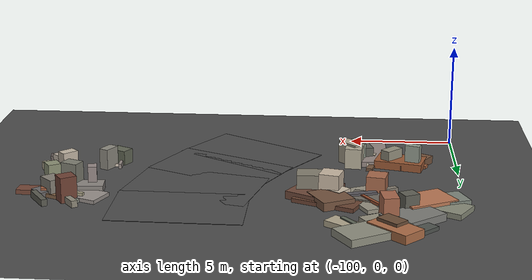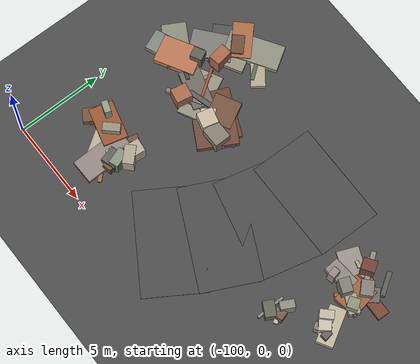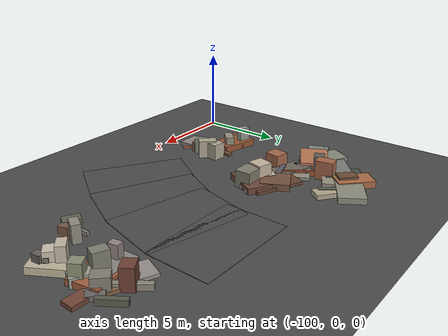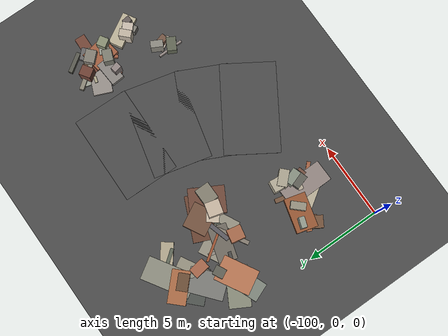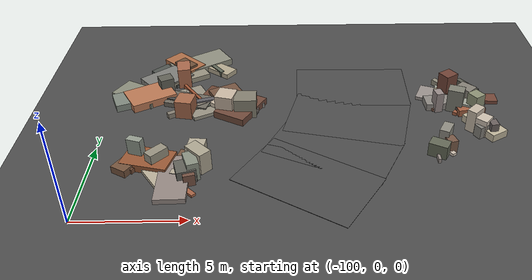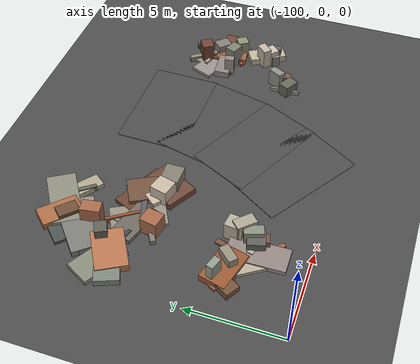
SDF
<sdf version="1.6">
 <world name="navitas_arena">
  <model name="ground_plane">
   <static>true</static>
   <link name="link">
    <collision name="collision">
     <geometry><plane><normal>0 0 1</normal><size>400 400</size></plane></geometry>
     <surface><friction><ode><mu>0.800</mu><mu2>0.800</mu2></ode></friction></surface>
    </collision>
    <visual name="visual">
     <cast_shadows>false</cast_shadows>
     <geometry><plane><normal>0 0 1</normal><size>400 400</size></plane></geometry>
     <material>
      <specular>0.04 0.04 0.04 1</specular>
      <script>
       <uri>file://media/materials/scripts/navitas_asphalt.material</uri>
       <name>Navitas/RealArenaAsphalt</name>
      </script>
     </material>
    </visual>
   </link>
  </model>
  <model name="road_kolay_2_9">
   <static>true</static>
   <pose>-89.992 2.500 0.040 0 0 1.006</pose>
   <link name="link">
    <collision name="col"><geometry><box><size>3.662 6.000 0.020</size></box></geometry></collision>
    <visual name="vis">
     <geometry><box><size>3.662 6.000 0.020</size></box></geometry>
     <material>
      <specular>0.04 0.04 0.04 1</specular>
      <script>
       <uri>file://media/materials/scripts/navitas_asphalt.material</uri>
       <name>Navitas/RealArenaAsphalt</name>
      </script>
     </material>
    </visual>
   </link>
  </model>
  <model name="road_kolay_2_10">
   <static>true</static>
   <pose>-88.686 4.833 0.040 0 0 1.118</pose>
   <link name="link">
    <collision name="col"><geometry><box><size>3.494 6.000 0.020</size></box></geometry></collision>
    <visual name="vis">
     <geometry><box><size>3.494 6.000 0.020</size></box></geometry>
     <material>
      <specular>0.04 0.04 0.04 1</specular>
      <script>
       <uri>file://media/materials/scripts/navitas_asphalt.material</uri>
       <name>Navitas/RealArenaAsphalt</name>
      </script>
     </material>
    </visual>
   </link>
  </model>
  <model name="road_kolay_2_11">
   <static>true</static>
   <pose>-87.765 7.460 0.040 0 0 1.333</pose>
   <link name="link">
    <collision name="col"><geometry><box><size>3.904 6.000 0.020</size></box></geometry></collision>
    <visual name="vis">
     <geometry><box><size>3.904 6.000 0.020</size></box></geometry>
     <material>
      <specular>0.04 0.04 0.04 1</specular>
      <script>
       <uri>file://media/materials/scripts/navitas_asphalt.material</uri>
       <name>Navitas/RealArenaAsphalt</name>
      </script>
     </material>
    </visual>
   </link>
  </model>
  <model name="road_kolay_2_12">
   <static>true</static>
   <pose>-87.390 10.340 0.040 0 0 1.556</pose>
   <link name="link">
    <collision name="col"><geometry><box><size>3.740 6.000 0.020</size></box></geometry></collision>
    <visual name="vis">
     <geometry><box><size>3.740 6.000 0.020</size></box></geometry>
     <material>
      <specular>0.04 0.04 0.04 1</specular>
      <script>
       <uri>file://media/materials/scripts/navitas_asphalt.material</uri>
       <name>Navitas/RealArenaAsphalt</name>
      </script>
     </material>
    </visual>
   </link>
  </model>
  <model name="deb_kolay_9">
   <static>true</static>
   <pose>-81.437 9.232 0.000 0 0 0</pose>
   <link name="link">
    <collision name="col_0">
     <pose>0.308 -0.806 0.140 0.000 0.000 2.942</pose>
     <geometry><box><size>0.452 0.224 0.281</size></box></geometry>
    </collision>
    <visual name="vis_0">
     <pose>0.308 -0.806 0.140 0.000 0.000 2.942</pose>
     <geometry><box><size>0.452 0.224 0.281</size></box></geometry>
     <material>
      <ambient>0.44 0.45 0.42 1</ambient>
      <diffuse>0.47 0.49 0.45 1</diffuse>
      <specular>0.05 0.05 0.045 1</specular>
     </material>
    </visual>
    <collision name="col_1">
     <pose>0.308 -0.372 0.107 0.000 0.000 3.107</pose>
     <geometry><box><size>2.577 0.703 0.213</size></box></geometry>
    </collision>
    <visual name="vis_1">
     <pose>0.308 -0.372 0.107 0.000 0.000 3.107</pose>
     <geometry><box><size>2.577 0.703 0.213</size></box></geometry>
     <material>
      <ambient>0.42 0.26 0.20 1</ambient>
      <diffuse>0.46 0.28 0.22 1</diffuse>
      <specular>0.05 0.05 0.045 1</specular>
     </material>
    </visual>
    <collision name="col_2">
     <pose>-0.083 -0.602 0.126 0.000 0.000 3.942</pose>
     <geometry><box><size>2.037 0.821 0.252</size></box></geometry>
    </collision>
    <visual name="vis_2">
     <pose>-0.083 -0.602 0.126 0.000 0.000 3.942</pose>
     <geometry><box><size>2.037 0.821 0.252</size></box></geometry>
     <material>
      <ambient>0.39 0.38 0.38 1</ambient>
      <diffuse>0.42 0.41 0.41 1</diffuse>
      <specular>0.05 0.05 0.045 1</specular>
     </material>
    </visual>
    <collision name="col_3">
     <pose>-0.139 -0.906 0.179 0.000 0.000 1.738</pose>
     <geometry><box><size>1.766 1.427 0.358</size></box></geometry>
    </collision>
    <visual name="vis_3">
     <pose>-0.139 -0.906 0.179 0.000 0.000 1.738</pose>
     <geometry><box><size>1.766 1.427 0.358</size></box></geometry>
     <material>
      <ambient>0.60 0.35 0.24 1</ambient>
      <diffuse>0.64 0.38 0.26 1</diffuse>
      <specular>0.05 0.05 0.045 1</specular>
     </material>
    </visual>
    <collision name="col_4">
     <pose>-0.035 -0.251 0.399 0.000 0.000 2.339</pose>
     <geometry><box><size>0.861 0.693 0.799</size></box></geometry>
    </collision>
    <visual name="vis_4">
     <pose>-0.035 -0.251 0.399 0.000 0.000 2.339</pose>
     <geometry><box><size>0.861 0.693 0.799</size></box></geometry>
     <material>
      <ambient>0.48 0.47 0.43 1</ambient>
      <diffuse>0.52 0.50 0.46 1</diffuse>
      <specular>0.05 0.05 0.045 1</specular>
     </material>
    </visual>
    <collision name="col_5">
     <pose>-0.270 -0.943 0.088 0.000 0.000 4.046</pose>
     <geometry><box><size>2.034 0.209 0.176</size></box></geometry>
    </collision>
    <visual name="vis_5">
     <pose>-0.270 -0.943 0.088 0.000 0.000 4.046</pose>
     <geometry><box><size>2.034 0.209 0.176</size></box></geometry>
     <material>
      <ambient>0.58 0.34 0.24 1</ambient>
      <diffuse>0.63 0.37 0.26 1</diffuse>
      <specular>0.05 0.05 0.045 1</specular>
     </material>
    </visual>
    <collision name="col_6">
     <pose>0.336 0.784 0.158 0.000 0.000 2.159</pose>
     <geometry><box><size>1.388 0.265 0.315</size></box></geometry>
    </collision>
    <visual name="vis_6">
     <pose>0.336 0.784 0.158 0.000 0.000 2.159</pose>
     <geometry><box><size>1.388 0.265 0.315</size></box></geometry>
     <material>
      <ambient>0.33 0.33 0.29 1</ambient>
      <diffuse>0.36 0.36 0.32 1</diffuse>
      <specular>0.05 0.05 0.045 1</specular>
     </material>
    </visual>
   </link>
  </model>
  <model name="deb_kolay_16">
   <static>true</static>
   <pose>-98.249 9.558 0.000 0 0 0</pose>
   <link name="link">
    <collision name="col_0">
     <pose>0.096 -0.197 0.209 0.000 0.000 3.659</pose>
     <geometry><box><size>2.373 1.644 0.418</size></box></geometry>
    </collision>
    <visual name="vis_0">
     <pose>0.096 -0.197 0.209 0.000 0.000 3.659</pose>
     <geometry><box><size>2.373 1.644 0.418</size></box></geometry>
     <material>
      <ambient>0.67 0.44 0.31 1</ambient>
      <diffuse>0.73 0.47 0.33 1</diffuse>
      <specular>0.05 0.05 0.045 1</specular>
     </material>
    </visual>
    <collision name="col_1">
     <pose>-0.526 0.118 0.128 0.000 0.000 2.634</pose>
     <geometry><box><size>2.601 1.407 0.257</size></box></geometry>
    </collision>
    <visual name="vis_1">
     <pose>-0.526 0.118 0.128 0.000 0.000 2.634</pose>
     <geometry><box><size>2.601 1.407 0.257</size></box></geometry>
     <material>
      <ambient>0.50 0.51 0.44 1</ambient>
      <diffuse>0.54 0.55 0.48 1</diffuse>
      <specular>0.05 0.05 0.045 1</specular>
     </material>
    </visual>
    <collision name="col_2">
     <pose>-0.326 -0.269 0.181 0.000 0.000 3.525</pose>
     <geometry><box><size>2.905 1.251 0.361</size></box></geometry>
    </collision>
    <visual name="vis_2">
     <pose>-0.326 -0.269 0.181 0.000 0.000 3.525</pose>
     <geometry><box><size>2.905 1.251 0.361</size></box></geometry>
     <material>
      <ambient>0.46 0.49 0.46 1</ambient>
      <diffuse>0.50 0.53 0.49 1</diffuse>
      <specular>0.05 0.05 0.045 1</specular>
     </material>
    </visual>
    <collision name="col_3">
     <pose>-0.221 -0.001 0.152 0.000 0.000 2.265</pose>
     <geometry><box><size>0.433 0.168 0.303</size></box></geometry>
    </collision>
    <visual name="vis_3">
     <pose>-0.221 -0.001 0.152 0.000 0.000 2.265</pose>
     <geometry><box><size>0.433 0.168 0.303</size></box></geometry>
     <material>
      <ambient>0.66 0.40 0.31 1</ambient>
      <diffuse>0.72 0.43 0.33 1</diffuse>
      <specular>0.05 0.05 0.045 1</specular>
     </material>
    </visual>
   </link>
  </model>
  <model name="deb_kolay_33">
   <static>true</static>
   <pose>-97.728 11.361 0.000 0 0 0</pose>
   <link name="link">
    <collision name="col_0">
     <pose>0.498 0.410 0.088 0.000 0.000 2.355</pose>
     <geometry><box><size>2.312 1.424 0.176</size></box></geometry>
    </collision>
    <visual name="vis_0">
     <pose>0.498 0.410 0.088 0.000 0.000 2.355</pose>
     <geometry><box><size>2.312 1.424 0.176</size></box></geometry>
     <material>
      <ambient>0.29 0.30 0.29 1</ambient>
      <diffuse>0.31 0.33 0.31 1</diffuse>
      <specular>0.05 0.05 0.045 1</specular>
     </material>
    </visual>
    <collision name="col_1">
     <pose>0.215 -0.206 0.174 0.000 0.000 0.699</pose>
     <geometry><box><size>2.426 1.599 0.348</size></box></geometry>
    </collision>
    <visual name="vis_1">
     <pose>0.215 -0.206 0.174 0.000 0.000 0.699</pose>
     <geometry><box><size>2.426 1.599 0.348</size></box></geometry>
     <material>
      <ambient>0.46 0.45 0.44 1</ambient>
      <diffuse>0.49 0.49 0.47 1</diffuse>
      <specular>0.05 0.05 0.045 1</specular>
     </material>
    </visual>
    <collision name="col_2">
     <pose>0.336 -1.248 0.453 0.000 0.000 0.464</pose>
     <geometry><box><size>0.707 0.629 0.905</size></box></geometry>
    </collision>
    <visual name="vis_2">
     <pose>0.336 -1.248 0.453 0.000 0.000 0.464</pose>
     <geometry><box><size>0.707 0.629 0.905</size></box></geometry>
     <material>
      <ambient>0.35 0.35 0.32 1</ambient>
      <diffuse>0.38 0.38 0.34 1</diffuse>
      <specular>0.05 0.05 0.045 1</specular>
     </material>
    </visual>
    <collision name="col_3">
     <pose>1.212 -0.367 0.561 0.000 0.000 1.727</pose>
     <geometry><box><size>1.027 0.686 1.122</size></box></geometry>
    </collision>
    <visual name="vis_3">
     <pose>1.212 -0.367 0.561 0.000 0.000 1.727</pose>
     <geometry><box><size>1.027 0.686 1.122</size></box></geometry>
     <material>
      <ambient>0.61 0.38 0.27 1</ambient>
      <diffuse>0.66 0.41 0.30 1</diffuse>
      <specular>0.05 0.05 0.045 1</specular>
     </material>
    </visual>
    <collision name="col_4">
     <pose>1.103 0.057 0.143 0.000 0.000 0.514</pose>
     <geometry><box><size>2.543 1.241 0.287</size></box></geometry>
    </collision>
    <visual name="vis_4">
     <pose>1.103 0.057 0.143 0.000 0.000 0.514</pose>
     <geometry><box><size>2.543 1.241 0.287</size></box></geometry>
     <material>
      <ambient>0.54 0.53 0.46 1</ambient>
      <diffuse>0.59 0.57 0.50 1</diffuse>
      <specular>0.05 0.05 0.045 1</specular>
     </material>
    </visual>
    <collision name="col_5">
     <pose>-0.094 -1.136 0.131 0.000 0.000 2.514</pose>
     <geometry><box><size>2.014 0.283 0.261</size></box></geometry>
    </collision>
    <visual name="vis_5">
     <pose>-0.094 -1.136 0.131 0.000 0.000 2.514</pose>
     <geometry><box><size>2.014 0.283 0.261</size></box></geometry>
     <material>
      <ambient>0.70 0.64 0.56 1</ambient>
      <diffuse>0.75 0.69 0.60 1</diffuse>
      <specular>0.05 0.05 0.045 1</specular>
     </material>
    </visual>
   </link>
  </model>
  <model name="deb_kolay_41">
   <static>true</static>
   <pose>-82.916 8.553 0.000 0 0 0</pose>
   <link name="link">
    <collision name="col_0">
     <pose>0.705 -0.476 0.622 0.000 0.000 2.756</pose>
     <geometry><box><size>0.800 0.619 1.245</size></box></geometry>
    </collision>
    <visual name="vis_0">
     <pose>0.705 -0.476 0.622 0.000 0.000 2.756</pose>
     <geometry><box><size>0.800 0.619 1.245</size></box></geometry>
     <material>
      <ambient>0.46 0.46 0.42 1</ambient>
      <diffuse>0.50 0.50 0.45 1</diffuse>
      <specular>0.05 0.05 0.045 1</specular>
     </material>
    </visual>
    <collision name="col_1">
     <pose>-0.218 -0.492 0.545 0.000 0.000 1.771</pose>
     <geometry><box><size>0.534 0.402 1.090</size></box></geometry>
    </collision>
    <visual name="vis_1">
     <pose>-0.218 -0.492 0.545 0.000 0.000 1.771</pose>
     <geometry><box><size>0.534 0.402 1.090</size></box></geometry>
     <material>
      <ambient>0.55 0.50 0.49 1</ambient>
      <diffuse>0.59 0.54 0.53 1</diffuse>
      <specular>0.05 0.05 0.045 1</specular>
     </material>
    </visual>
    <collision name="col_2">
     <pose>-0.348 0.258 0.076 0.000 0.000 4.221</pose>
     <geometry><box><size>0.296 0.160 0.152</size></box></geometry>
    </collision>
    <visual name="vis_2">
     <pose>-0.348 0.258 0.076 0.000 0.000 4.221</pose>
     <geometry><box><size>0.296 0.160 0.152</size></box></geometry>
     <material>
      <ambient>0.72 0.68 0.59 1</ambient>
      <diffuse>0.77 0.73 0.64 1</diffuse>
      <specular>0.05 0.05 0.045 1</specular>
     </material>
    </visual>
    <collision name="col_3">
     <pose>0.780 -0.511 0.166 0.000 0.000 2.430</pose>
     <geometry><box><size>1.233 0.196 0.333</size></box></geometry>
    </collision>
    <visual name="vis_3">
     <pose>0.780 -0.511 0.166 0.000 0.000 2.430</pose>
     <geometry><box><size>1.233 0.196 0.333</size></box></geometry>
     <material>
      <ambient>0.54 0.52 0.48 1</ambient>
      <diffuse>0.58 0.57 0.52 1</diffuse>
      <specular>0.05 0.05 0.045 1</specular>
     </material>
    </visual>
    <collision name="col_4">
     <pose>0.035 -0.436 0.077 0.000 0.000 3.510</pose>
     <geometry><box><size>1.120 0.182 0.154</size></box></geometry>
    </collision>
    <visual name="vis_4">
     <pose>0.035 -0.436 0.077 0.000 0.000 3.510</pose>
     <geometry><box><size>1.120 0.182 0.154</size></box></geometry>
     <material>
      <ambient>0.46 0.33 0.28 1</ambient>
      <diffuse>0.50 0.36 0.30 1</diffuse>
      <specular>0.05 0.05 0.045 1</specular>
     </material>
    </visual>
    <collision name="col_5">
     <pose>0.012 -0.108 0.184 0.000 0.000 3.213</pose>
     <geometry><box><size>1.631 0.882 0.367</size></box></geometry>
    </collision>
    <visual name="vis_5">
     <pose>0.012 -0.108 0.184 0.000 0.000 3.213</pose>
     <geometry><box><size>1.631 0.882 0.367</size></box></geometry>
     <material>
      <ambient>0.51 0.49 0.47 1</ambient>
      <diffuse>0.55 0.53 0.51 1</diffuse>
      <specular>0.05 0.05 0.045 1</specular>
     </material>
    </visual>
   </link>
  </model>
  <model name="deb_kolay_57">
   <static>true</static>
   <pose>-81.417 5.734 0.000 0 0 0</pose>
   <link name="link">
    <collision name="col_0">
     <pose>-0.214 0.599 0.589 0.000 0.000 2.358</pose>
     <geometry><box><size>0.489 0.789 1.178</size></box></geometry>
    </collision>
    <visual name="vis_0">
     <pose>-0.214 0.599 0.589 0.000 0.000 2.358</pose>
     <geometry><box><size>0.489 0.789 1.178</size></box></geometry>
     <material>
      <ambient>0.71 0.67 0.61 1</ambient>
      <diffuse>0.77 0.72 0.65 1</diffuse>
      <specular>0.05 0.05 0.045 1</specular>
     </material>
    </visual>
    <collision name="col_1">
     <pose>0.129 0.217 0.456 0.000 0.000 0.843</pose>
     <geometry><box><size>0.687 0.609 0.912</size></box></geometry>
    </collision>
    <visual name="vis_1">
     <pose>0.129 0.217 0.456 0.000 0.000 0.843</pose>
     <geometry><box><size>0.687 0.609 0.912</size></box></geometry>
     <material>
      <ambient>0.74 0.69 0.64 1</ambient>
      <diffuse>0.80 0.75 0.69 1</diffuse>
      <specular>0.05 0.05 0.045 1</specular>
     </material>
    </visual>
    <collision name="col_2">
     <pose>0.303 0.553 0.194 0.000 0.000 2.096</pose>
     <geometry><box><size>2.162 0.942 0.387</size></box></geometry>
    </collision>
    <visual name="vis_2">
     <pose>0.303 0.553 0.194 0.000 0.000 2.096</pose>
     <geometry><box><size>2.162 0.942 0.387</size></box></geometry>
     <material>
      <ambient>0.70 0.66 0.57 1</ambient>
      <diffuse>0.75 0.71 0.61 1</diffuse>
      <specular>0.05 0.05 0.045 1</specular>
     </material>
    </visual>
    <collision name="col_3">
     <pose>0.549 -0.014 0.393 0.000 0.000 1.696</pose>
     <geometry><box><size>0.491 0.388 0.785</size></box></geometry>
    </collision>
    <visual name="vis_3">
     <pose>0.549 -0.014 0.393 0.000 0.000 1.696</pose>
     <geometry><box><size>0.491 0.388 0.785</size></box></geometry>
     <material>
      <ambient>0.39 0.36 0.34 1</ambient>
      <diffuse>0.42 0.38 0.37 1</diffuse>
      <specular>0.05 0.05 0.045 1</specular>
     </material>
    </visual>
    <collision name="col_4">
     <pose>0.153 0.072 0.314 0.000 0.000 0.542</pose>
     <geometry><box><size>0.919 0.436 0.628</size></box></geometry>
    </collision>
    <visual name="vis_4">
     <pose>0.153 0.072 0.314 0.000 0.000 0.542</pose>
     <geometry><box><size>0.919 0.436 0.628</size></box></geometry>
     <material>
      <ambient>0.47 0.46 0.43 1</ambient>
      <diffuse>0.51 0.50 0.47 1</diffuse>
      <specular>0.05 0.05 0.045 1</specular>
     </material>
    </visual>
    <collision name="col_5">
     <pose>0.063 0.417 0.206 0.000 0.000 2.602</pose>
     <geometry><box><size>1.022 0.373 0.412</size></box></geometry>
    </collision>
    <visual name="vis_5">
     <pose>0.063 0.417 0.206 0.000 0.000 2.602</pose>
     <geometry><box><size>1.022 0.373 0.412</size></box></geometry>
     <material>
      <ambient>0.63 0.37 0.24 1</ambient>
      <diffuse>0.68 0.40 0.25 1</diffuse>
      <specular>0.05 0.05 0.045 1</specular>
     </material>
    </visual>
   </link>
  </model>
  <model name="deb_kolay_70">
   <static>true</static>
   <pose>-95.826 12.085 0.000 0 0 0</pose>
   <link name="link">
    <collision name="col_0">
     <pose>-0.017 0.758 0.174 0.000 0.000 0.565</pose>
     <geometry><box><size>3.196 1.526 0.348</size></box></geometry>
    </collision>
    <visual name="vis_0">
     <pose>-0.017 0.758 0.174 0.000 0.000 0.565</pose>
     <geometry><box><size>3.196 1.526 0.348</size></box></geometry>
     <material>
      <ambient>0.52 0.51 0.46 1</ambient>
      <diffuse>0.56 0.56 0.50 1</diffuse>
      <specular>0.05 0.05 0.045 1</specular>
     </material>
    </visual>
    <collision name="col_1">
     <pose>-0.881 0.594 0.200 0.000 0.000 2.380</pose>
     <geometry><box><size>2.145 1.172 0.401</size></box></geometry>
    </collision>
    <visual name="vis_1">
     <pose>-0.881 0.594 0.200 0.000 0.000 2.380</pose>
     <geometry><box><size>2.145 1.172 0.401</size></box></geometry>
     <material>
      <ambient>0.63 0.40 0.26 1</ambient>
      <diffuse>0.68 0.43 0.28 1</diffuse>
      <specular>0.05 0.05 0.045 1</specular>
     </material>
    </visual>
    <collision name="col_2">
     <pose>0.920 0.078 0.164 0.000 0.000 2.225</pose>
     <geometry><box><size>1.284 0.216 0.328</size></box></geometry>
    </collision>
    <visual name="vis_2">
     <pose>0.920 0.078 0.164 0.000 0.000 2.225</pose>
     <geometry><box><size>1.284 0.216 0.328</size></box></geometry>
     <material>
      <ambient>0.35 0.38 0.32 1</ambient>
      <diffuse>0.38 0.41 0.35 1</diffuse>
      <specular>0.05 0.05 0.045 1</specular>
     </material>
    </visual>
    <collision name="col_3">
     <pose>0.975 0.243 0.137 0.000 0.000 2.490</pose>
     <geometry><box><size>2.128 0.808 0.274</size></box></geometry>
    </collision>
    <visual name="vis_3">
     <pose>0.975 0.243 0.137 0.000 0.000 2.490</pose>
     <geometry><box><size>2.128 0.808 0.274</size></box></geometry>
     <material>
      <ambient>0.64 0.61 0.51 1</ambient>
      <diffuse>0.70 0.66 0.56 1</diffuse>
      <specular>0.05 0.05 0.045 1</specular>
     </material>
    </visual>
    <collision name="col_4">
     <pose>-0.777 0.216 0.270 0.000 0.000 2.374</pose>
     <geometry><box><size>1.105 0.708 0.540</size></box></geometry>
    </collision>
    <visual name="vis_4">
     <pose>-0.777 0.216 0.270 0.000 0.000 2.374</pose>
     <geometry><box><size>1.105 0.708 0.540</size></box></geometry>
     <material>
      <ambient>0.40 0.29 0.21 1</ambient>
      <diffuse>0.43 0.31 0.22 1</diffuse>
      <specular>0.05 0.05 0.045 1</specular>
     </material>
    </visual>
   </link>
  </model>
  <model name="deb_kolay_76">
   <static>true</static>
   <pose>-95.531 3.086 0.000 0 0 0</pose>
   <link name="link">
    <collision name="col_0">
     <pose>0.307 -0.067 0.473 0.000 0.000 1.909</pose>
     <geometry><box><size>1.001 0.556 0.946</size></box></geometry>
    </collision>
    <visual name="vis_0">
     <pose>0.307 -0.067 0.473 0.000 0.000 1.909</pose>
     <geometry><box><size>1.001 0.556 0.946</size></box></geometry>
     <material>
      <ambient>0.50 0.53 0.48 1</ambient>
      <diffuse>0.54 0.57 0.51 1</diffuse>
      <specular>0.05 0.05 0.045 1</specular>
     </material>
    </visual>
    <collision name="col_1">
     <pose>0.195 -0.460 0.292 0.000 0.000 0.264</pose>
     <geometry><box><size>0.536 0.909 0.583</size></box></geometry>
    </collision>
    <visual name="vis_1">
     <pose>0.195 -0.460 0.292 0.000 0.000 0.264</pose>
     <geometry><box><size>0.536 0.909 0.583</size></box></geometry>
     <material>
      <ambient>0.42 0.30 0.24 1</ambient>
      <diffuse>0.46 0.32 0.26 1</diffuse>
      <specular>0.05 0.05 0.045 1</specular>
     </material>
    </visual>
    <collision name="col_2">
     <pose>-0.468 -0.519 0.126 0.000 0.000 1.589</pose>
     <geometry><box><size>3.067 1.414 0.252</size></box></geometry>
    </collision>
    <visual name="vis_2">
     <pose>-0.468 -0.519 0.126 0.000 0.000 1.589</pose>
     <geometry><box><size>3.067 1.414 0.252</size></box></geometry>
     <material>
      <ambient>0.54 0.49 0.47 1</ambient>
      <diffuse>0.58 0.53 0.51 1</diffuse>
      <specular>0.05 0.05 0.045 1</specular>
     </material>
    </visual>
    <collision name="col_3">
     <pose>0.583 0.467 0.539 0.000 0.000 2.345</pose>
     <geometry><box><size>1.097 0.630 1.078</size></box></geometry>
    </collision>
    <visual name="vis_3">
     <pose>0.583 0.467 0.539 0.000 0.000 2.345</pose>
     <geometry><box><size>1.097 0.630 1.078</size></box></geometry>
     <material>
      <ambient>0.63 0.60 0.53 1</ambient>
      <diffuse>0.68 0.65 0.57 1</diffuse>
      <specular>0.05 0.05 0.045 1</specular>
     </material>
    </visual>
    <collision name="col_4">
     <pose>-0.254 -0.782 0.060 0.000 0.000 2.355</pose>
     <geometry><box><size>2.298 0.239 0.121</size></box></geometry>
    </collision>
    <visual name="vis_4">
     <pose>-0.254 -0.782 0.060 0.000 0.000 2.355</pose>
     <geometry><box><size>2.298 0.239 0.121</size></box></geometry>
     <material>
      <ambient>0.61 0.36 0.25 1</ambient>
      <diffuse>0.65 0.39 0.27 1</diffuse>
      <specular>0.05 0.05 0.045 1</specular>
     </material>
    </visual>
    <collision name="col_5">
     <pose>-0.445 -0.178 0.141 0.000 0.000 1.345</pose>
     <geometry><box><size>0.334 0.356 0.283</size></box></geometry>
    </collision>
    <visual name="vis_5">
     <pose>-0.445 -0.178 0.141 0.000 0.000 1.345</pose>
     <geometry><box><size>0.334 0.356 0.283</size></box></geometry>
     <material>
      <ambient>0.66 0.62 0.54 1</ambient>
      <diffuse>0.71 0.67 0.59 1</diffuse>
      <specular>0.05 0.05 0.045 1</specular>
     </material>
    </visual>
    <collision name="col_6">
     <pose>0.485 0.248 0.147 0.000 0.000 1.598</pose>
     <geometry><box><size>1.679 0.193 0.294</size></box></geometry>
    </collision>
    <visual name="vis_6">
     <pose>0.485 0.248 0.147 0.000 0.000 1.598</pose>
     <geometry><box><size>1.679 0.193 0.294</size></box></geometry>
     <material>
      <ambient>0.48 0.47 0.42 1</ambient>
      <diffuse>0.52 0.50 0.45 1</diffuse>
      <specular>0.05 0.05 0.045 1</specular>
     </material>
    </visual>
   </link>
  </model>
  <model name="deb_kolay_79">
   <static>true</static>
   <pose>-94.199 8.261 0.000 0 0 0</pose>
   <link name="link">
    <collision name="col_0">
     <pose>0.674 -0.079 0.126 0.000 0.000 -0.162</pose>
     <geometry><box><size>2.323 0.204 0.252</size></box></geometry>
    </collision>
    <visual name="vis_0">
     <pose>0.674 -0.079 0.126 0.000 0.000 -0.162</pose>
     <geometry><box><size>2.323 0.204 0.252</size></box></geometry>
     <material>
      <ambient>0.55 0.51 0.48 1</ambient>
      <diffuse>0.59 0.55 0.52 1</diffuse>
      <specular>0.05 0.05 0.045 1</specular>
     </material>
    </visual>
    <collision name="col_1">
     <pose>0.815 -0.248 0.152 0.000 0.000 1.697</pose>
     <geometry><box><size>0.302 0.277 0.304</size></box></geometry>
    </collision>
    <visual name="vis_1">
     <pose>0.815 -0.248 0.152 0.000 0.000 1.697</pose>
     <geometry><box><size>0.302 0.277 0.304</size></box></geometry>
     <material>
      <ambient>0.54 0.49 0.46 1</ambient>
      <diffuse>0.58 0.53 0.50 1</diffuse>
      <specular>0.05 0.05 0.045 1</specular>
     </material>
    </visual>
    <collision name="col_2">
     <pose>0.882 -0.076 0.184 0.000 0.000 1.065</pose>
     <geometry><box><size>2.343 1.742 0.367</size></box></geometry>
    </collision>
    <visual name="vis_2">
     <pose>0.882 -0.076 0.184 0.000 0.000 1.065</pose>
     <geometry><box><size>2.343 1.742 0.367</size></box></geometry>
     <material>
      <ambient>0.41 0.26 0.21 1</ambient>
      <diffuse>0.44 0.29 0.23 1</diffuse>
      <specular>0.05 0.05 0.045 1</specular>
     </material>
    </visual>
    <collision name="col_3">
     <pose>0.182 -0.102 0.546 0.000 0.000 1.315</pose>
     <geometry><box><size>0.942 0.932 1.091</size></box></geometry>
    </collision>
    <visual name="vis_3">
     <pose>0.182 -0.102 0.546 0.000 0.000 1.315</pose>
     <geometry><box><size>0.942 0.932 1.091</size></box></geometry>
     <material>
      <ambient>0.73 0.67 0.60 1</ambient>
      <diffuse>0.79 0.72 0.64 1</diffuse>
      <specular>0.05 0.05 0.045 1</specular>
     </material>
    </visual>
    <collision name="col_4">
     <pose>-0.800 0.422 0.083 0.000 0.000 1.887</pose>
     <geometry><box><size>1.789 1.137 0.166</size></box></geometry>
    </collision>
    <visual name="vis_4">
     <pose>-0.800 0.422 0.083 0.000 0.000 1.887</pose>
     <geometry><box><size>1.789 1.137 0.166</size></box></geometry>
     <material>
      <ambient>0.55 0.50 0.47 1</ambient>
      <diffuse>0.60 0.54 0.51 1</diffuse>
      <specular>0.05 0.05 0.045 1</specular>
     </material>
    </visual>
    <collision name="col_5">
     <pose>-0.002 -0.579 0.106 0.000 0.000 0.432</pose>
     <geometry><box><size>0.275 0.323 0.212</size></box></geometry>
    </collision>
    <visual name="vis_5">
     <pose>-0.002 -0.579 0.106 0.000 0.000 0.432</pose>
     <geometry><box><size>0.275 0.323 0.212</size></box></geometry>
     <material>
      <ambient>0.33 0.31 0.29 1</ambient>
      <diffuse>0.35 0.34 0.32 1</diffuse>
      <specular>0.05 0.05 0.045 1</specular>
     </material>
    </visual>
   </link>
  </model>
  <model name="deb_kolay_129">
   <static>true</static>
   <pose>-81.731 8.229 0.000 0 0 0</pose>
   <link name="link">
    <collision name="col_0">
     <pose>0.492 -0.411 0.544 0.000 0.000 -1.003</pose>
     <geometry><box><size>0.632 0.615 1.087</size></box></geometry>
    </collision>
    <visual name="vis_0">
     <pose>0.492 -0.411 0.544 0.000 0.000 -1.003</pose>
     <geometry><box><size>0.632 0.615 1.087</size></box></geometry>
     <material>
      <ambient>0.51 0.52 0.43 1</ambient>
      <diffuse>0.55 0.57 0.46 1</diffuse>
      <specular>0.05 0.05 0.045 1</specular>
     </material>
    </visual>
    <collision name="col_1">
     <pose>-0.626 0.119 0.140 0.000 0.000 -0.453</pose>
     <geometry><box><size>0.438 0.173 0.279</size></box></geometry>
    </collision>
    <visual name="vis_1">
     <pose>-0.626 0.119 0.140 0.000 0.000 -0.453</pose>
     <geometry><box><size>0.438 0.173 0.279</size></box></geometry>
     <material>
      <ambient>0.71 0.64 0.56 1</ambient>
      <diffuse>0.77 0.69 0.60 1</diffuse>
      <specular>0.05 0.05 0.045 1</specular>
     </material>
    </visual>
    <collision name="col_2">
     <pose>0.434 0.399 0.086 0.000 0.000 -0.908</pose>
     <geometry><box><size>0.288 0.261 0.172</size></box></geometry>
    </collision>
    <visual name="vis_2">
     <pose>0.434 0.399 0.086 0.000 0.000 -0.908</pose>
     <geometry><box><size>0.288 0.261 0.172</size></box></geometry>
     <material>
      <ambient>0.50 0.45 0.46 1</ambient>
      <diffuse>0.54 0.49 0.50 1</diffuse>
      <specular>0.05 0.05 0.045 1</specular>
     </material>
    </visual>
    <collision name="col_3">
     <pose>0.403 -0.345 0.236 0.000 0.000 -0.463</pose>
     <geometry><box><size>1.104 0.641 0.472</size></box></geometry>
    </collision>
    <visual name="vis_3">
     <pose>0.403 -0.345 0.236 0.000 0.000 -0.463</pose>
     <geometry><box><size>1.104 0.641 0.472</size></box></geometry>
     <material>
      <ambient>0.59 0.60 0.55 1</ambient>
      <diffuse>0.63 0.64 0.59 1</diffuse>
      <specular>0.05 0.05 0.045 1</specular>
     </material>
    </visual>
    <collision name="col_4">
     <pose>-0.049 0.417 0.087 0.000 0.000 1.157</pose>
     <geometry><box><size>1.918 1.069 0.174</size></box></geometry>
    </collision>
    <visual name="vis_4">
     <pose>-0.049 0.417 0.087 0.000 0.000 1.157</pose>
     <geometry><box><size>1.918 1.069 0.174</size></box></geometry>
     <material>
      <ambient>0.46 0.35 0.25 1</ambient>
      <diffuse>0.50 0.38 0.27 1</diffuse>
      <specular>0.05 0.05 0.045 1</specular>
     </material>
    </visual>
   </link>
  </model>
  <model name="deb_kolay_132">
   <static>true</static>
   <pose>-95.765 8.377 0.000 0 0 0</pose>
   <link name="link">
    <collision name="col_0">
     <pose>0.474 0.345 0.177 0.000 0.000 0.286</pose>
     <geometry><box><size>1.596 0.288 0.353</size></box></geometry>
    </collision>
    <visual name="vis_0">
     <pose>0.474 0.345 0.177 0.000 0.000 0.286</pose>
     <geometry><box><size>1.596 0.288 0.353</size></box></geometry>
     <material>
      <ambient>0.34 0.33 0.35 1</ambient>
      <diffuse>0.37 0.36 0.38 1</diffuse>
      <specular>0.05 0.05 0.045 1</specular>
     </material>
    </visual>
    <collision name="col_1">
     <pose>0.155 0.508 0.091 0.000 0.000 -1.094</pose>
     <geometry><box><size>2.856 1.467 0.183</size></box></geometry>
    </collision>
    <visual name="vis_1">
     <pose>0.155 0.508 0.091 0.000 0.000 -1.094</pose>
     <geometry><box><size>2.856 1.467 0.183</size></box></geometry>
     <material>
      <ambient>0.55 0.53 0.47 1</ambient>
      <diffuse>0.59 0.57 0.51 1</diffuse>
      <specular>0.05 0.05 0.045 1</specular>
     </material>
    </visual>
    <collision name="col_2">
     <pose>-0.285 0.561 0.128 0.000 0.000 -0.286</pose>
     <geometry><box><size>2.344 1.217 0.256</size></box></geometry>
    </collision>
    <visual name="vis_2">
     <pose>-0.285 0.561 0.128 0.000 0.000 -0.286</pose>
     <geometry><box><size>2.344 1.217 0.256</size></box></geometry>
     <material>
      <ambient>0.41 0.39 0.35 1</ambient>
      <diffuse>0.44 0.42 0.38 1</diffuse>
      <specular>0.05 0.05 0.045 1</specular>
     </material>
    </visual>
    <collision name="col_3">
     <pose>0.505 -0.071 0.111 0.000 0.000 0.405</pose>
     <geometry><box><size>1.658 0.204 0.222</size></box></geometry>
    </collision>
    <visual name="vis_3">
     <pose>0.505 -0.071 0.111 0.000 0.000 0.405</pose>
     <geometry><box><size>1.658 0.204 0.222</size></box></geometry>
     <material>
      <ambient>0.35 0.36 0.32 1</ambient>
      <diffuse>0.37 0.39 0.35 1</diffuse>
      <specular>0.05 0.05 0.045 1</specular>
     </material>
    </visual>
    <collision name="col_4">
     <pose>-0.184 -0.113 0.169 0.000 0.000 1.324</pose>
     <geometry><box><size>0.442 0.317 0.337</size></box></geometry>
    </collision>
    <visual name="vis_4">
     <pose>-0.184 -0.113 0.169 0.000 0.000 1.324</pose>
     <geometry><box><size>0.442 0.317 0.337</size></box></geometry>
     <material>
      <ambient>0.64 0.35 0.26 1</ambient>
      <diffuse>0.69 0.37 0.29 1</diffuse>
      <specular>0.05 0.05 0.045 1</specular>
     </material>
    </visual>
    <collision name="col_5">
     <pose>-0.294 -0.252 0.139 0.000 0.000 0.535</pose>
     <geometry><box><size>2.143 0.268 0.278</size></box></geometry>
    </collision>
    <visual name="vis_5">
     <pose>-0.294 -0.252 0.139 0.000 0.000 0.535</pose>
     <geometry><box><size>2.143 0.268 0.278</size></box></geometry>
     <material>
      <ambient>0.49 0.45 0.40 1</ambient>
      <diffuse>0.52 0.49 0.44 1</diffuse>
      <specular>0.05 0.05 0.045 1</specular>
     </material>
    </visual>
   </link>
  </model>
  <model name="deb_kolay_138">
   <static>true</static>
   <pose>-83.819 5.247 0.000 0 0 0</pose>
   <link name="link">
    <collision name="col_0">
     <pose>-0.041 -0.817 0.113 0.000 0.000 1.593</pose>
     <geometry><box><size>1.696 0.140 0.226</size></box></geometry>
    </collision>
    <visual name="vis_0">
     <pose>-0.041 -0.817 0.113 0.000 0.000 1.593</pose>
     <geometry><box><size>1.696 0.140 0.226</size></box></geometry>
     <material>
      <ambient>0.54 0.50 0.48 1</ambient>
      <diffuse>0.58 0.54 0.52 1</diffuse>
      <specular>0.05 0.05 0.045 1</specular>
     </material>
    </visual>
    <collision name="col_1">
     <pose>0.504 -0.172 0.501 0.000 0.000 2.655</pose>
     <geometry><box><size>0.466 0.812 1.001</size></box></geometry>
    </collision>
    <visual name="vis_1">
     <pose>0.504 -0.172 0.501 0.000 0.000 2.655</pose>
     <geometry><box><size>0.466 0.812 1.001</size></box></geometry>
     <material>
      <ambient>0.52 0.51 0.47 1</ambient>
      <diffuse>0.56 0.55 0.51 1</diffuse>
      <specular>0.05 0.05 0.045 1</specular>
     </material>
    </visual>
    <collision name="col_2">
     <pose>0.650 -0.693 0.341 0.000 0.000 0.270</pose>
     <geometry><box><size>0.465 0.545 0.682</size></box></geometry>
    </collision>
    <visual name="vis_2">
     <pose>0.650 -0.693 0.341 0.000 0.000 0.270</pose>
     <geometry><box><size>0.465 0.545 0.682</size></box></geometry>
     <material>
      <ambient>0.44 0.32 0.26 1</ambient>
      <diffuse>0.47 0.35 0.28 1</diffuse>
      <specular>0.05 0.05 0.045 1</specular>
     </material>
    </visual>
    <collision name="col_3">
     <pose>0.476 -0.698 0.074 0.000 0.000 2.165</pose>
     <geometry><box><size>1.091 0.243 0.148</size></box></geometry>
    </collision>
    <visual name="vis_3">
     <pose>0.476 -0.698 0.074 0.000 0.000 2.165</pose>
     <geometry><box><size>1.091 0.243 0.148</size></box></geometry>
     <material>
      <ambient>0.73 0.68 0.63 1</ambient>
      <diffuse>0.79 0.74 0.68 1</diffuse>
      <specular>0.05 0.05 0.045 1</specular>
     </material>
    </visual>
    <collision name="col_4">
     <pose>0.056 -0.982 0.346 0.000 0.000 2.638</pose>
     <geometry><box><size>0.912 0.623 0.693</size></box></geometry>
    </collision>
    <visual name="vis_4">
     <pose>0.056 -0.982 0.346 0.000 0.000 2.638</pose>
     <geometry><box><size>0.912 0.623 0.693</size></box></geometry>
     <material>
      <ambient>0.36 0.38 0.31 1</ambient>
      <diffuse>0.39 0.41 0.34 1</diffuse>
      <specular>0.05 0.05 0.045 1</specular>
     </material>
    </visual>
   </link>
  </model>
  <model name="deb_kolay_143">
   <static>true</static>
   <pose>-93.480 8.895 0.000 0 0 0</pose>
   <link name="link">
    <collision name="col_0">
     <pose>-0.452 0.234 0.096 0.000 0.000 2.731</pose>
     <geometry><box><size>2.981 1.498 0.192</size></box></geometry>
    </collision>
    <visual name="vis_0">
     <pose>-0.452 0.234 0.096 0.000 0.000 2.731</pose>
     <geometry><box><size>2.981 1.498 0.192</size></box></geometry>
     <material>
      <ambient>0.39 0.25 0.18 1</ambient>
      <diffuse>0.42 0.27 0.20 1</diffuse>
      <specular>0.05 0.05 0.045 1</specular>
     </material>
    </visual>
    <collision name="col_1">
     <pose>-0.861 0.020 0.068 0.000 0.000 1.987</pose>
     <geometry><box><size>0.205 0.394 0.136</size></box></geometry>
    </collision>
    <visual name="vis_1">
     <pose>-0.861 0.020 0.068 0.000 0.000 1.987</pose>
     <geometry><box><size>0.205 0.394 0.136</size></box></geometry>
     <material>
      <ambient>0.58 0.31 0.20 1</ambient>
      <diffuse>0.63 0.34 0.21 1</diffuse>
      <specular>0.05 0.05 0.045 1</specular>
     </material>
    </visual>
    <collision name="col_2">
     <pose>1.202 -0.325 0.122 0.000 0.000 1.759</pose>
     <geometry><box><size>0.332 0.347 0.243</size></box></geometry>
    </collision>
    <visual name="vis_2">
     <pose>1.202 -0.325 0.122 0.000 0.000 1.759</pose>
     <geometry><box><size>0.332 0.347 0.243</size></box></geometry>
     <material>
      <ambient>0.52 0.51 0.49 1</ambient>
      <diffuse>0.57 0.55 0.53 1</diffuse>
      <specular>0.05 0.05 0.045 1</specular>
     </material>
    </visual>
    <collision name="col_3">
     <pose>-0.869 -0.426 0.209 0.000 0.000 2.472</pose>
     <geometry><box><size>0.737 0.822 0.417</size></box></geometry>
    </collision>
    <visual name="vis_3">
     <pose>-0.869 -0.426 0.209 0.000 0.000 2.472</pose>
     <geometry><box><size>0.737 0.822 0.417</size></box></geometry>
     <material>
      <ambient>0.74 0.69 0.61 1</ambient>
      <diffuse>0.80 0.74 0.66 1</diffuse>
      <specular>0.05 0.05 0.045 1</specular>
     </material>
    </visual>
    <collision name="col_4">
     <pose>-0.022 0.088 0.088 0.000 0.000 2.141</pose>
     <geometry><box><size>0.202 0.188 0.176</size></box></geometry>
    </collision>
    <visual name="vis_4">
     <pose>-0.022 0.088 0.088 0.000 0.000 2.141</pose>
     <geometry><box><size>0.202 0.188 0.176</size></box></geometry>
     <material>
      <ambient>0.46 0.43 0.40 1</ambient>
      <diffuse>0.49 0.47 0.44 1</diffuse>
      <specular>0.05 0.05 0.045 1</specular>
     </material>
    </visual>
    <collision name="col_5">
     <pose>-0.534 0.336 0.197 0.000 0.000 3.633</pose>
     <geometry><box><size>1.541 1.661 0.395</size></box></geometry>
    </collision>
    <visual name="vis_5">
     <pose>-0.534 0.336 0.197 0.000 0.000 3.633</pose>
     <geometry><box><size>1.541 1.661 0.395</size></box></geometry>
     <material>
      <ambient>0.43 0.31 0.24 1</ambient>
      <diffuse>0.46 0.33 0.25 1</diffuse>
      <specular>0.05 0.05 0.045 1</specular>
     </material>
    </visual>
    <collision name="col_6">
     <pose>0.445 -0.881 0.505 0.000 0.000 3.153</pose>
     <geometry><box><size>1.140 0.977 1.010</size></box></geometry>
    </collision>
    <visual name="vis_6">
     <pose>0.445 -0.881 0.505 0.000 0.000 3.153</pose>
     <geometry><box><size>1.140 0.977 1.010</size></box></geometry>
     <material>
      <ambient>0.48 0.46 0.41 1</ambient>
      <diffuse>0.52 0.50 0.44 1</diffuse>
      <specular>0.05 0.05 0.045 1</specular>
     </material>
    </visual>
   </link>
  </model>
  <model name="deb_kolay_157">
   <static>true</static>
   <pose>-96.361 8.707 0.000 0 0 0</pose>
   <link name="link">
    <collision name="col_0">
     <pose>0.439 0.888 0.157 0.000 0.000 2.169</pose>
     <geometry><box><size>1.831 0.154 0.314</size></box></geometry>
    </collision>
    <visual name="vis_0">
     <pose>0.439 0.888 0.157 0.000 0.000 2.169</pose>
     <geometry><box><size>1.831 0.154 0.314</size></box></geometry>
     <material>
      <ambient>0.57 0.31 0.19 1</ambient>
      <diffuse>0.62 0.33 0.20 1</diffuse>
      <specular>0.05 0.05 0.045 1</specular>
     </material>
    </visual>
    <collision name="col_1">
     <pose>0.282 -0.759 0.480 0.000 0.000 1.383</pose>
     <geometry><box><size>0.930 0.863 0.960</size></box></geometry>
    </collision>
    <visual name="vis_1">
     <pose>0.282 -0.759 0.480 0.000 0.000 1.383</pose>
     <geometry><box><size>0.930 0.863 0.960</size></box></geometry>
     <material>
      <ambient>0.61 0.38 0.28 1</ambient>
      <diffuse>0.66 0.42 0.30 1</diffuse>
      <specular>0.05 0.05 0.045 1</specular>
     </material>
    </visual>
    <collision name="col_2">
     <pose>0.163 1.131 0.115 0.000 0.000 1.329</pose>
     <geometry><box><size>0.480 0.192 0.230</size></box></geometry>
    </collision>
    <visual name="vis_2">
     <pose>0.163 1.131 0.115 0.000 0.000 1.329</pose>
     <geometry><box><size>0.480 0.192 0.230</size></box></geometry>
     <material>
      <ambient>0.53 0.50 0.46 1</ambient>
      <diffuse>0.57 0.54 0.50 1</diffuse>
      <specular>0.05 0.05 0.045 1</specular>
     </material>
    </visual>
    <collision name="col_3">
     <pose>-1.116 0.443 0.158 0.000 0.000 -0.325</pose>
     <geometry><box><size>1.619 0.211 0.316</size></box></geometry>
    </collision>
    <visual name="vis_3">
     <pose>-1.116 0.443 0.158 0.000 0.000 -0.325</pose>
     <geometry><box><size>1.619 0.211 0.316</size></box></geometry>
     <material>
      <ambient>0.27 0.27 0.26 1</ambient>
      <diffuse>0.29 0.29 0.28 1</diffuse>
      <specular>0.05 0.05 0.045 1</specular>
     </material>
    </visual>
   </link>
  </model>
  <model name="deb_kolay_171">
   <static>true</static>
   <pose>-82.117 9.024 0.000 0 0 0</pose>
   <link name="link">
    <collision name="col_0">
     <pose>-0.542 0.973 0.069 0.000 0.000 1.315</pose>
     <geometry><box><size>0.494 0.433 0.138</size></box></geometry>
    </collision>
    <visual name="vis_0">
     <pose>-0.542 0.973 0.069 0.000 0.000 1.315</pose>
     <geometry><box><size>0.494 0.433 0.138</size></box></geometry>
     <material>
      <ambient>0.58 0.59 0.54 1</ambient>
      <diffuse>0.62 0.63 0.58 1</diffuse>
      <specular>0.05 0.05 0.045 1</specular>
     </material>
    </visual>
    <collision name="col_1">
     <pose>0.348 -1.183 0.175 0.000 0.000 0.437</pose>
     <geometry><box><size>0.927 0.541 0.350</size></box></geometry>
    </collision>
    <visual name="vis_1">
     <pose>0.348 -1.183 0.175 0.000 0.000 0.437</pose>
     <geometry><box><size>0.927 0.541 0.350</size></box></geometry>
     <material>
      <ambient>0.30 0.29 0.28 1</ambient>
      <diffuse>0.33 0.32 0.30 1</diffuse>
      <specular>0.05 0.05 0.045 1</specular>
     </material>
    </visual>
    <collision name="col_2">
     <pose>1.075 -0.303 0.125 0.000 0.000 1.927</pose>
     <geometry><box><size>0.217 0.478 0.249</size></box></geometry>
    </collision>
    <visual name="vis_2">
     <pose>1.075 -0.303 0.125 0.000 0.000 1.927</pose>
     <geometry><box><size>0.217 0.478 0.249</size></box></geometry>
     <material>
      <ambient>0.64 0.64 0.53 1</ambient>
      <diffuse>0.69 0.69 0.57 1</diffuse>
      <specular>0.05 0.05 0.045 1</specular>
     </material>
    </visual>
    <collision name="col_3">
     <pose>-0.700 0.503 0.155 0.000 0.000 2.868</pose>
     <geometry><box><size>0.411 0.185 0.311</size></box></geometry>
    </collision>
    <visual name="vis_3">
     <pose>-0.700 0.503 0.155 0.000 0.000 2.868</pose>
     <geometry><box><size>0.411 0.185 0.311</size></box></geometry>
     <material>
      <ambient>0.64 0.61 0.51 1</ambient>
      <diffuse>0.69 0.66 0.55 1</diffuse>
      <specular>0.05 0.05 0.045 1</specular>
     </material>
    </visual>
    <collision name="col_4">
     <pose>-0.930 0.280 0.087 0.000 0.000 2.745</pose>
     <geometry><box><size>1.721 1.253 0.174</size></box></geometry>
    </collision>
    <visual name="vis_4">
     <pose>-0.930 0.280 0.087 0.000 0.000 2.745</pose>
     <geometry><box><size>1.721 1.253 0.174</size></box></geometry>
     <material>
      <ambient>0.56 0.53 0.51 1</ambient>
      <diffuse>0.60 0.57 0.55 1</diffuse>
      <specular>0.05 0.05 0.045 1</specular>
     </material>
    </visual>
    <collision name="col_5">
     <pose>-0.147 0.831 0.155 0.000 0.000 2.207</pose>
     <geometry><box><size>1.942 0.282 0.311</size></box></geometry>
    </collision>
    <visual name="vis_5">
     <pose>-0.147 0.831 0.155 0.000 0.000 2.207</pose>
     <geometry><box><size>1.942 0.282 0.311</size></box></geometry>
     <material>
      <ambient>0.52 0.50 0.45 1</ambient>
      <diffuse>0.56 0.54 0.48 1</diffuse>
      <specular>0.05 0.05 0.045 1</specular>
     </material>
    </visual>
    <collision name="col_6">
     <pose>-0.177 0.721 0.585 0.000 0.000 2.154</pose>
     <geometry><box><size>0.672 0.763 1.171</size></box></geometry>
    </collision>
    <visual name="vis_6">
     <pose>-0.177 0.721 0.585 0.000 0.000 2.154</pose>
     <geometry><box><size>0.672 0.763 1.171</size></box></geometry>
     <material>
      <ambient>0.41 0.24 0.20 1</ambient>
      <diffuse>0.44 0.26 0.21 1</diffuse>
      <specular>0.05 0.05 0.045 1</specular>
     </material>
    </visual>
   </link>
  </model>
  <model name="deb_kolay_196">
   <static>true</static>
   <pose>-98.151 4.159 0.000 0 0 0</pose>
   <link name="link">
    <collision name="col_0">
     <pose>0.006 -0.469 0.183 0.000 0.000 1.032</pose>
     <geometry><box><size>1.586 0.806 0.367</size></box></geometry>
    </collision>
    <visual name="vis_0">
     <pose>0.006 -0.469 0.183 0.000 0.000 1.032</pose>
     <geometry><box><size>1.586 0.806 0.367</size></box></geometry>
     <material>
      <ambient>0.42 0.31 0.22 1</ambient>
      <diffuse>0.46 0.33 0.24 1</diffuse>
      <specular>0.05 0.05 0.045 1</specular>
     </material>
    </visual>
    <collision name="col_1">
     <pose>0.269 0.036 0.597 0.000 0.000 -0.331</pose>
     <geometry><box><size>0.702 0.373 1.194</size></box></geometry>
    </collision>
    <visual name="vis_1">
     <pose>0.269 0.036 0.597 0.000 0.000 -0.331</pose>
     <geometry><box><size>0.702 0.373 1.194</size></box></geometry>
     <material>
      <ambient>0.54 0.56 0.52 1</ambient>
      <diffuse>0.58 0.61 0.56 1</diffuse>
      <specular>0.05 0.05 0.045 1</specular>
     </material>
    </visual>
    <collision name="col_2">
     <pose>0.835 -0.314 0.190 0.000 0.000 -0.253</pose>
     <geometry><box><size>2.277 1.411 0.380</size></box></geometry>
    </collision>
    <visual name="vis_2">
     <pose>0.835 -0.314 0.190 0.000 0.000 -0.253</pose>
     <geometry><box><size>2.277 1.411 0.380</size></box></geometry>
     <material>
      <ambient>0.55 0.33 0.19 1</ambient>
      <diffuse>0.60 0.35 0.21 1</diffuse>
      <specular>0.05 0.05 0.045 1</specular>
     </material>
    </visual>
    <collision name="col_3">
     <pose>-0.310 -0.148 0.072 0.000 0.000 1.135</pose>
     <geometry><box><size>0.352 0.228 0.143</size></box></geometry>
    </collision>
    <visual name="vis_3">
     <pose>-0.310 -0.148 0.072 0.000 0.000 1.135</pose>
     <geometry><box><size>0.352 0.228 0.143</size></box></geometry>
     <material>
      <ambient>0.60 0.36 0.23 1</ambient>
      <diffuse>0.65 0.39 0.25 1</diffuse>
      <specular>0.05 0.05 0.045 1</specular>
     </material>
    </visual>
    <collision name="col_4">
     <pose>0.517 -0.329 0.123 0.000 0.000 1.035</pose>
     <geometry><box><size>1.621 0.237 0.246</size></box></geometry>
    </collision>
    <visual name="vis_4">
     <pose>0.517 -0.329 0.123 0.000 0.000 1.035</pose>
     <geometry><box><size>1.621 0.237 0.246</size></box></geometry>
     <material>
      <ambient>0.44 0.29 0.22 1</ambient>
      <diffuse>0.48 0.32 0.23 1</diffuse>
      <specular>0.05 0.05 0.045 1</specular>
     </material>
    </visual>
    <collision name="col_5">
     <pose>0.273 -0.260 0.133 0.000 0.000 -0.274</pose>
     <geometry><box><size>0.489 0.372 0.266</size></box></geometry>
    </collision>
    <visual name="vis_5">
     <pose>0.273 -0.260 0.133 0.000 0.000 -0.274</pose>
     <geometry><box><size>0.489 0.372 0.266</size></box></geometry>
     <material>
      <ambient>0.70 0.67 0.59 1</ambient>
      <diffuse>0.75 0.73 0.64 1</diffuse>
      <specular>0.05 0.05 0.045 1</specular>
     </material>
    </visual>
   </link>
  </model>
  <model name="deb_kolay_203">
   <static>true</static>
   <pose>-96.176 3.688 0.000 0 0 0</pose>
   <link name="link">
    <collision name="col_0">
     <pose>1.097 0.284 0.489 0.000 0.000 -0.116</pose>
     <geometry><box><size>0.792 0.942 0.978</size></box></geometry>
    </collision>
    <visual name="vis_0">
     <pose>1.097 0.284 0.489 0.000 0.000 -0.116</pose>
     <geometry><box><size>0.792 0.942 0.978</size></box></geometry>
     <material>
      <ambient>0.66 0.63 0.56 1</ambient>
      <diffuse>0.71 0.68 0.60 1</diffuse>
      <specular>0.05 0.05 0.045 1</specular>
     </material>
    </visual>
    <collision name="col_1">
     <pose>-0.333 -0.816 0.094 0.000 0.000 -0.979</pose>
     <geometry><box><size>1.876 1.362 0.188</size></box></geometry>
    </collision>
    <visual name="vis_1">
     <pose>-0.333 -0.816 0.094 0.000 0.000 -0.979</pose>
     <geometry><box><size>1.876 1.362 0.188</size></box></geometry>
     <material>
      <ambient>0.67 0.64 0.56 1</ambient>
      <diffuse>0.73 0.69 0.60 1</diffuse>
      <specular>0.05 0.05 0.045 1</specular>
     </material>
    </visual>
    <collision name="col_2">
     <pose>0.697 -0.869 0.337 0.000 0.000 -1.286</pose>
     <geometry><box><size>0.944 0.877 0.675</size></box></geometry>
    </collision>
    <visual name="vis_2">
     <pose>0.697 -0.869 0.337 0.000 0.000 -1.286</pose>
     <geometry><box><size>0.944 0.877 0.675</size></box></geometry>
     <material>
      <ambient>0.35 0.35 0.33 1</ambient>
      <diffuse>0.38 0.38 0.35 1</diffuse>
      <specular>0.05 0.05 0.045 1</specular>
     </material>
    </visual>
    <collision name="col_3">
     <pose>-0.380 0.296 0.133 0.000 0.000 -0.485</pose>
     <geometry><box><size>0.218 0.201 0.266</size></box></geometry>
    </collision>
    <visual name="vis_3">
     <pose>-0.380 0.296 0.133 0.000 0.000 -0.485</pose>
     <geometry><box><size>0.218 0.201 0.266</size></box></geometry>
     <material>
      <ambient>0.55 0.56 0.50 1</ambient>
      <diffuse>0.59 0.61 0.54 1</diffuse>
      <specular>0.05 0.05 0.045 1</specular>
     </material>
    </visual>
    <collision name="col_4">
     <pose>0.206 0.336 0.065 0.000 0.000 1.325</pose>
     <geometry><box><size>1.437 0.297 0.129</size></box></geometry>
    </collision>
    <visual name="vis_4">
     <pose>0.206 0.336 0.065 0.000 0.000 1.325</pose>
     <geometry><box><size>1.437 0.297 0.129</size></box></geometry>
     <material>
      <ambient>0.43 0.31 0.23 1</ambient>
      <diffuse>0.46 0.34 0.25 1</diffuse>
      <specular>0.05 0.05 0.045 1</specular>
     </material>
    </visual>
    <collision name="col_5">
     <pose>-0.708 0.088 0.423 0.000 0.000 0.816</pose>
     <geometry><box><size>0.986 0.497 0.845</size></box></geometry>
    </collision>
    <visual name="vis_5">
     <pose>-0.708 0.088 0.423 0.000 0.000 0.816</pose>
     <geometry><box><size>0.986 0.497 0.845</size></box></geometry>
     <material>
      <ambient>0.54 0.53 0.46 1</ambient>
      <diffuse>0.59 0.57 0.50 1</diffuse>
      <specular>0.05 0.05 0.045 1</specular>
     </material>
    </visual>
    <collision name="col_6">
     <pose>0.268 0.186 0.102 0.000 0.000 0.110</pose>
     <geometry><box><size>0.496 0.434 0.204</size></box></geometry>
    </collision>
    <visual name="vis_6">
     <pose>0.268 0.186 0.102 0.000 0.000 0.110</pose>
     <geometry><box><size>0.496 0.434 0.204</size></box></geometry>
     <material>
      <ambient>0.77 0.73 0.66 1</ambient>
      <diffuse>0.84 0.79 0.71 1</diffuse>
      <specular>0.05 0.05 0.045 1</specular>
     </material>
    </visual>
   </link>
  </model>
 </world>
</sdf>
